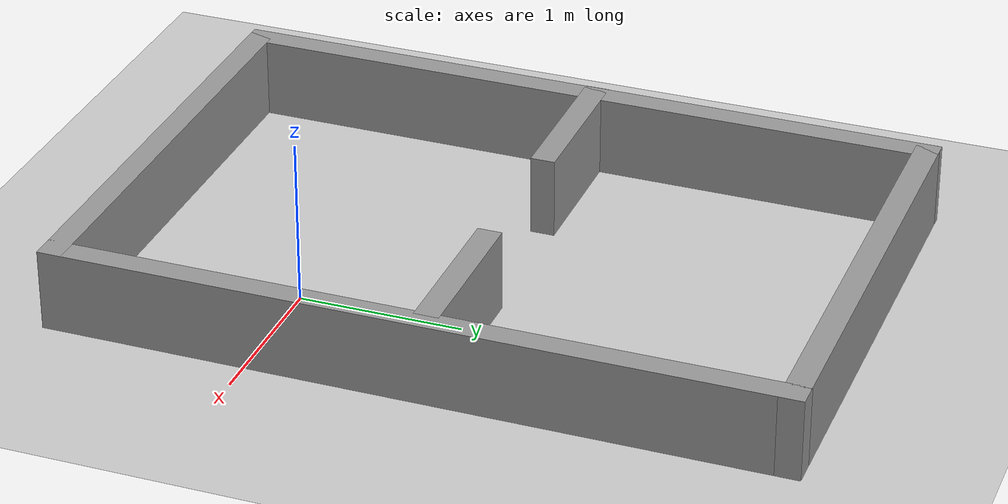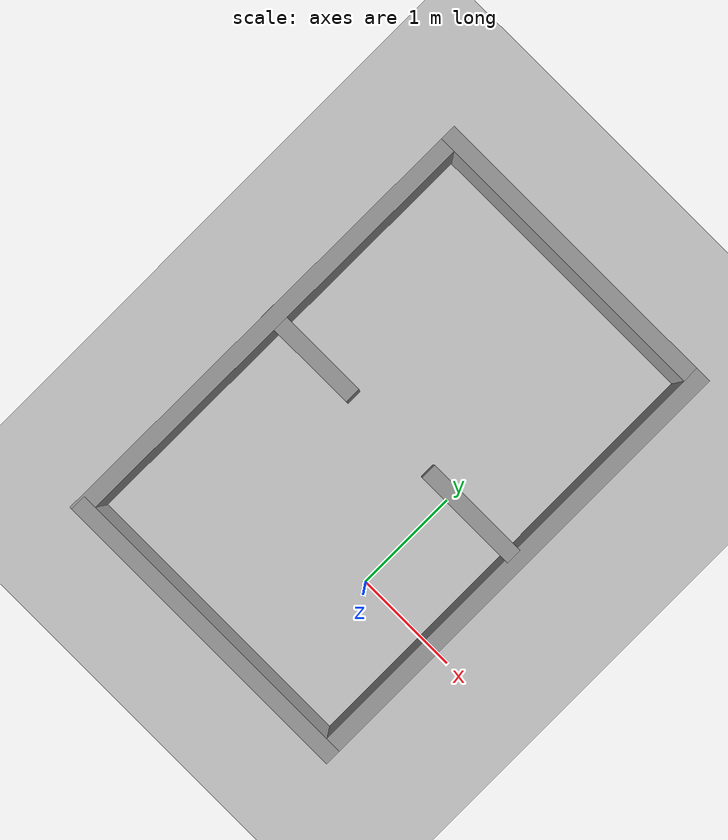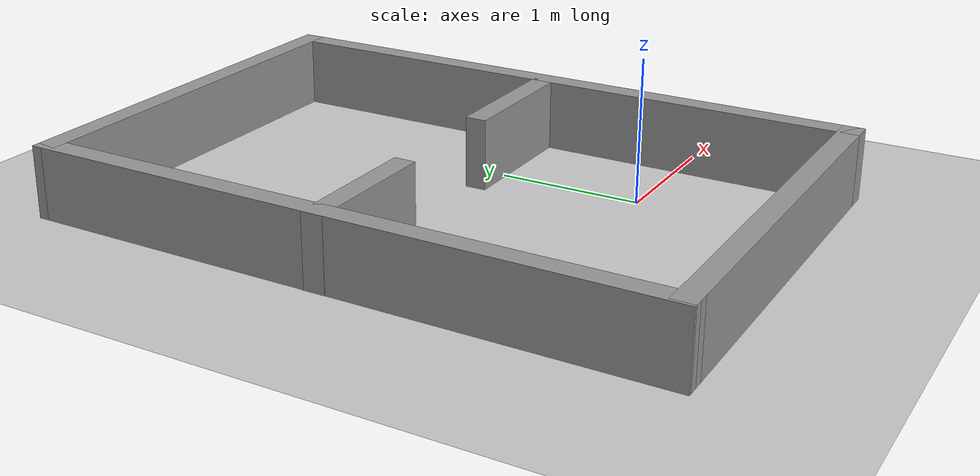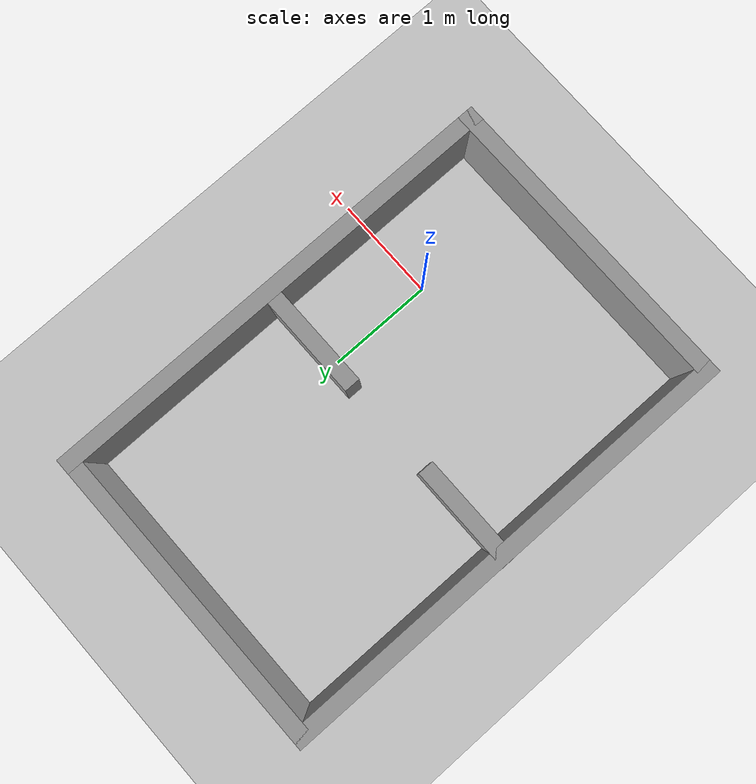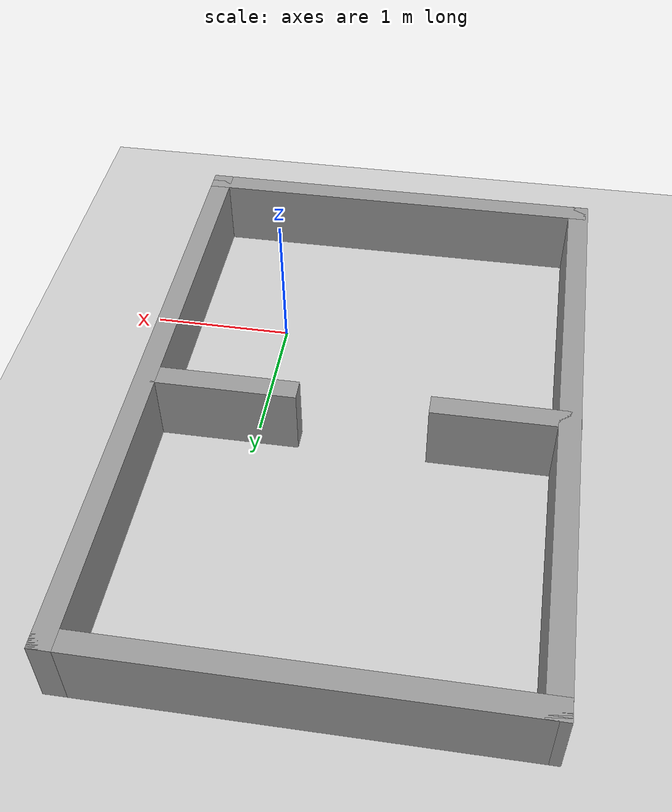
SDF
<sdf version="1.6">
 <world name="default">
  <light name="sun" type="directional">
   <pose>0 0 10 0 -0 0</pose>
   <diffuse>0.8 0.8 0.8 1</diffuse>
   <specular>0.1 0.1 0.1 1</specular>
   <attenuation>
    <range>1000</range>
    <constant>0.9</constant>
    <linear>0.01</linear>
    <quadratic>0.001</quadratic>
   </attenuation>
   <direction>-0.5 0.5 -1</direction>
  </light>
  <model name="ground_plane">
   <static>1</static>
   <link name="link">
    <collision name="collision">
     <geometry><plane><normal>0 0 1</normal><size>100 100</size></plane></geometry>
     <surface><friction><ode><mu>100</mu><mu2>50</mu2></ode></friction></surface>
    </collision>
    <visual name="visual">
     <cast_shadows>0</cast_shadows>
     <geometry><plane><normal>0 0 1</normal><size>100 100</size></plane></geometry>
     <material>
      <script><uri>file://media/materials/scripts/gazebo.material</uri><name>Gazebo/Grey</name></script>
     </material>
    </visual>
   </link>
  </model>
  <gravity>0 0 -9.8</gravity>
  <magnetic_field>6e-06 2.3e-05 -4.2e-05</magnetic_field>
  <atmosphere type="adiabatic"/>
  <physics name="default_physics" default="0" type="ode">
   <max_step_size>0.001</max_step_size>
   <real_time_factor>1</real_time_factor>
   <real_time_update_rate>1000</real_time_update_rate>
  </physics>
  <scene><ambient>0.4 0.4 0.4 1</ambient><background>0.7 0.7 0.7 1</background><shadows>1</shadows></scene>
  <spherical_coordinates>
   <surface_model>EARTH_WGS84</surface_model>
   <latitude_deg>0</latitude_deg>
   <longitude_deg>0</longitude_deg>
   <elevation>0</elevation>
   <heading_deg>0</heading_deg>
  </spherical_coordinates>
  <model name="wall_test_1.world">
   <pose>-0.695172 0.995 0 0 -0 0</pose>
   <link name="Wall_1">
    <collision name="Wall_1_Collision">
     <geometry><box><size>3 0.15 0.5</size></box></geometry>
     <pose>0 0 0.25 0 -0 0</pose>
    </collision>
    <visual name="Wall_1_Visual">
     <pose>0 0 0.25 0 -0 0</pose>
     <geometry><box><size>3 0.15 0.5</size></box></geometry>
     <material>
      <script><uri>file://media/materials/scripts/gazebo.material</uri><name>Gazebo/Grey</name></script>
      <ambient>1 1 1 1</ambient>
     </material>
    </visual>
    <pose>0.010172 -2.175 0 0 -0 0</pose>
   </link>
   <link name="Wall_10">
    <collision name="Wall_10_Collision">
     <geometry><box><size>1 0.15 0.5</size></box></geometry>
     <pose>0 0 0.25 0 -0 0</pose>
    </collision>
    <visual name="Wall_10_Visual">
     <pose>0 0 0.25 0 -0 0</pose>
     <geometry><box><size>1 0.15 0.5</size></box></geometry>
     <material>
      <script><uri>file://media/materials/scripts/gazebo.material</uri><name>Gazebo/Grey</name></script>
      <ambient>1 1 1 1</ambient>
     </material>
    </visual>
    <pose>0.890172 0.067 0 0 -0 3.14159</pose>
   </link>
   <link name="Wall_4">
    <collision name="Wall_4_Collision">
     <geometry><box><size>4.5 0.15 0.5</size></box></geometry>
     <pose>0 0 0.25 0 -0 0</pose>
    </collision>
    <visual name="Wall_4_Visual">
     <pose>0 0 0.25 0 -0 0</pose>
     <geometry><box><size>4.5 0.15 0.5</size></box></geometry>
     <material>
      <script><uri>file://media/materials/scripts/gazebo.material</uri><name>Gazebo/Grey</name></script>
      <ambient>1 1 1 1</ambient>
     </material>
    </visual>
    <pose>1.43517 0 0 0 -0 1.5708</pose>
   </link>
   <link name="Wall_5">
    <collision name="Wall_5_Collision">
     <geometry><box><size>3 0.15 0.5</size></box></geometry>
     <pose>0 0 0.25 0 -0 0</pose>
    </collision>
    <visual name="Wall_5_Visual">
     <pose>0 0 0.25 0 -0 0</pose>
     <geometry><box><size>3 0.15 0.5</size></box></geometry>
     <material>
      <script><uri>file://media/materials/scripts/gazebo.material</uri><name>Gazebo/Grey</name></script>
      <ambient>1 1 1 1</ambient>
     </material>
    </visual>
    <pose>0.010172 2.175 0 0 -0 3.14159</pose>
   </link>
   <link name="Wall_6">
    <collision name="Wall_6_Collision">
     <geometry><box><size>4.5 0.15 0.5</size></box></geometry>
     <pose>0 0 0.25 0 -0 0</pose>
    </collision>
    <visual name="Wall_6_Visual">
     <pose>0 0 0.25 0 -0 0</pose>
     <geometry><box><size>4.5 0.15 0.5</size></box></geometry>
     <material>
      <script><uri>file://media/materials/scripts/gazebo.material</uri><name>Gazebo/Grey</name></script>
      <ambient>1 1 1 1</ambient>
     </material>
    </visual>
    <pose>-1.42483 0 0 0 0 -1.57539</pose>
   </link>
   <link name="Wall_8">
    <collision name="Wall_8_Collision">
     <geometry><box><size>1 0.15 0.5</size></box></geometry>
     <pose>0 0 0.25 0 -0 0</pose>
    </collision>
    <visual name="Wall_8_Visual">
     <pose>0 0 0.25 0 -0 0</pose>
     <geometry><box><size>1 0.15 0.5</size></box></geometry>
     <material>
      <script><uri>file://media/materials/scripts/gazebo.material</uri><name>Gazebo/Grey</name></script>
      <ambient>1 1 1 1</ambient>
     </material>
    </visual>
    <pose>-1.00183 0.067 0 0 -0 0</pose>
   </link>
   <static>1</static>
  </model>
  <plugin name="observer_plugin" filename="libgazebo_observer_plugin.so"/>
 </world>
</sdf>
